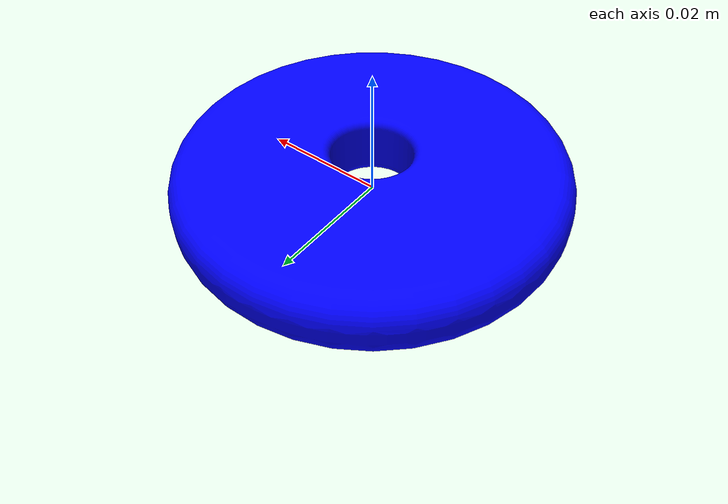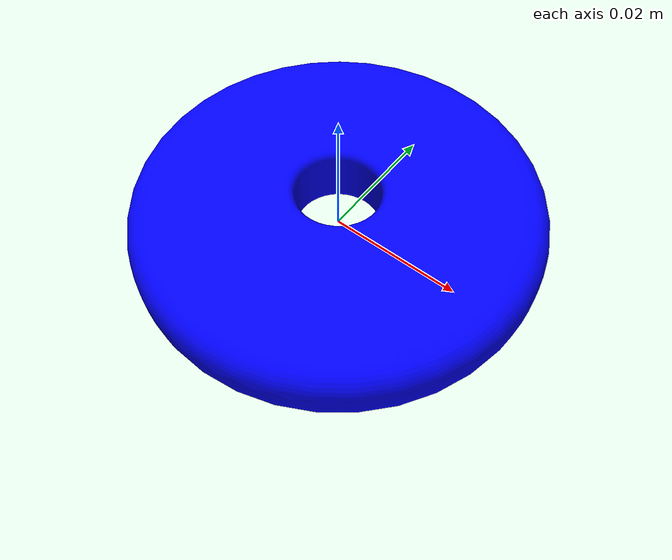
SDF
<?xml version="1.0"?>
<sdf version="1.9">
    <model name="disk2">
        <link name="disk2_link">
            <frame name="disk2_frame">
                <pose>0 0 0 0 -0 0</pose>
            </frame>
            <collision name="disk2_collision">
                <geometry>
                    <cylinder>
                        <radius>0.030</radius>
                        <length>0.010</length>
                    </cylinder>
                </geometry>
            </collision>
            <collision name="hole_collision">
                <geometry>
                    <cylinder>
                        <radius>0.0125</radius>
                        <length>0.010</length>
                    </cylinder>
                </geometry>
                <pose>0 0 0 0 0 0</pose>
            </collision>
            <visual name="disk2_visual">
                <pose>0.10000000000000000555 -1.4006897765247850566e-17 -0.022000000000000002193 0 -0 0</pose>
                <geometry>
                    <mesh>
                        <uri>
                        file:///home/leo/workspace/ur_gz/src/Universal_Robots_ROS2_Ignition_Simulation/ur_simulation_gz/sdf/models/disk2/disk2.dae
                        </uri>
                    </mesh>
                </geometry>
                <material>
                    <ambient>0 0 1 1</ambient>
                    <diffuse>0 0 1 1</diffuse>
                    <specular>0.1 0.1 0.1 1</specular>
                    <emissive>0 0 0 0</emissive>
                </material>
            </visual>
            <inertial>
                <pose>0 0 0 0 0 0</pose>
                <mass>0.0695285</mass>
                <inertia>
                    <ixx>0.00001625</ixx><ixy>0</ixy><ixz>0</ixz>
                    <iyy>0.00001625</iyy><iyz>0</iyz>
                    <izz>0.00003141</izz>
                </inertia>
            </inertial>
        </link>
    </model>
</sdf>
